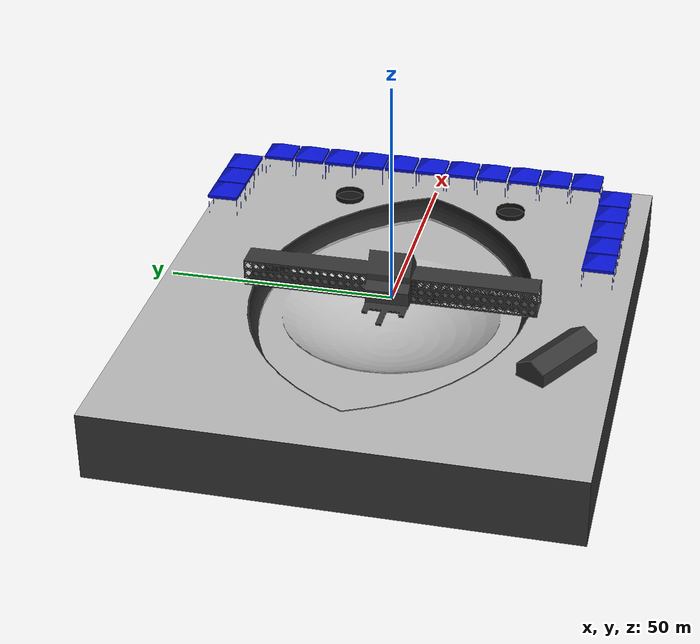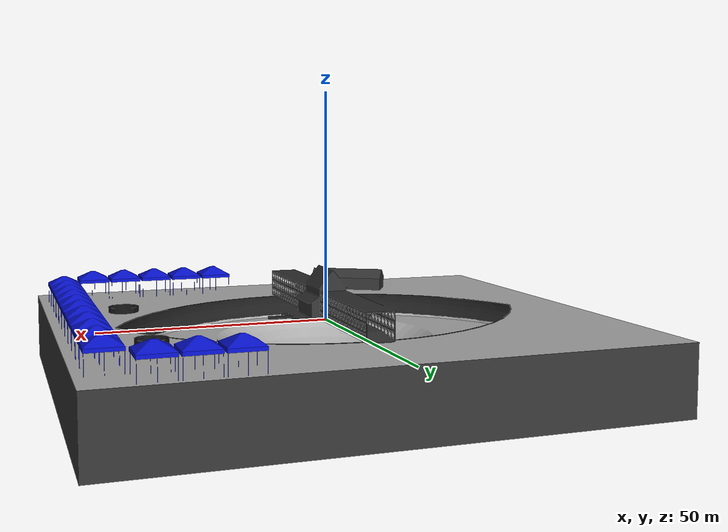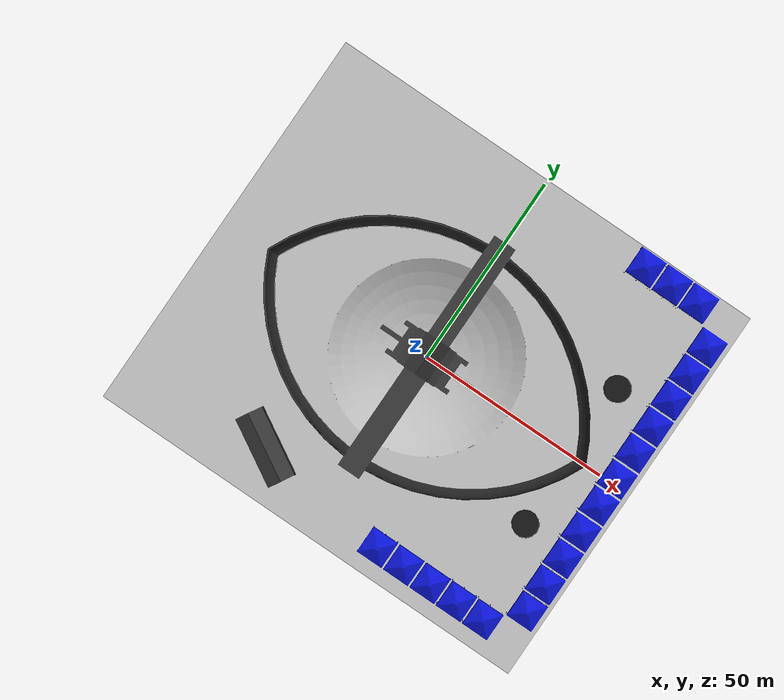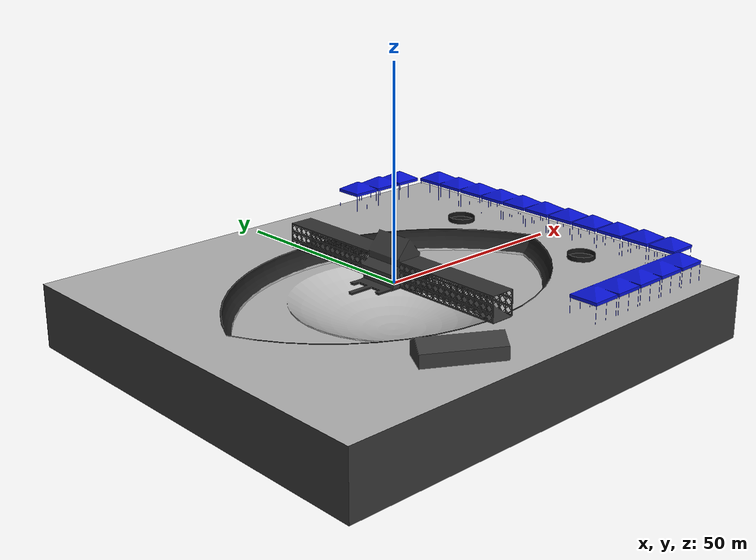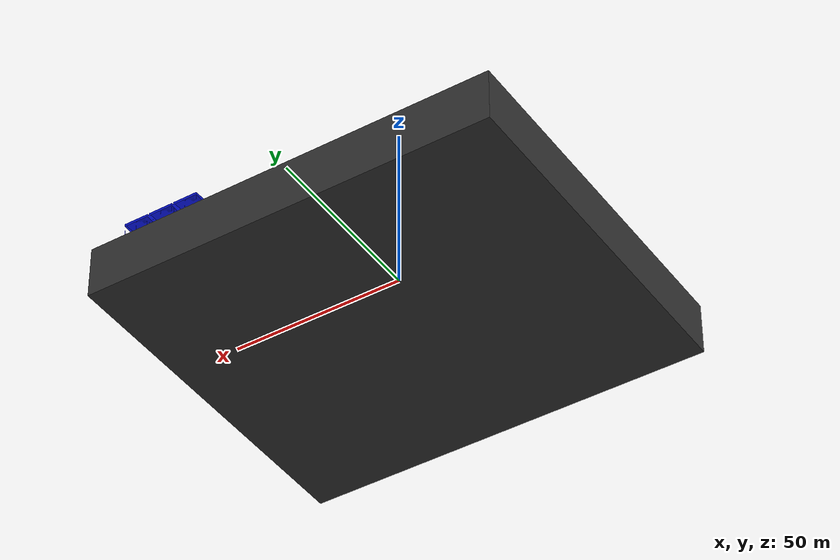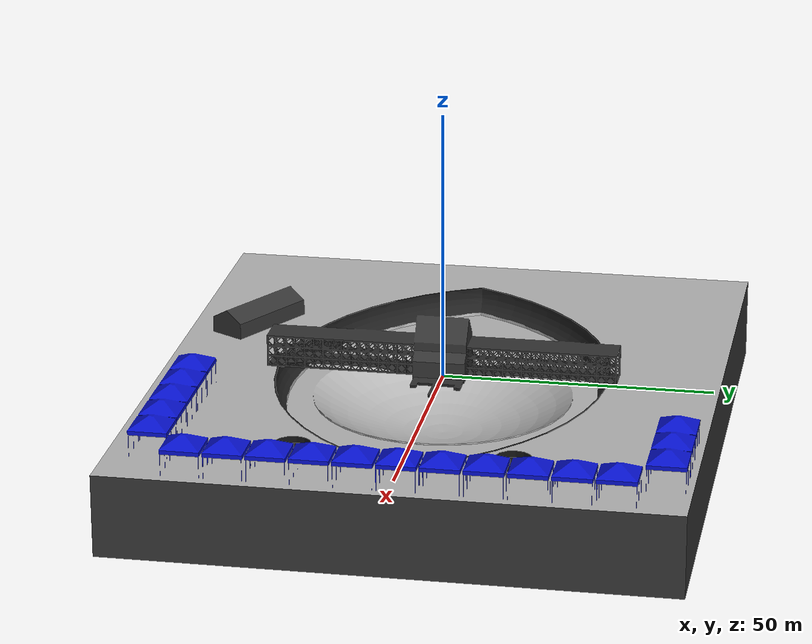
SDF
<?xml version="1.0" ?>
<sdf version="1.5">
  <model name="transdec">
    <static>true</static>
    <link name="link">

      <collision name="collision">
        <pose>0 0 0 0 0 0</pose>
        <geometry>
          <mesh><uri>model://transdec/meshes/transdec.dae</uri></mesh>
        </geometry>
      </collision>

      <visual name="visual">
        <cast_shadows>true</cast_shadows>
        <pose>0 0 0 0 0 0</pose>
        <geometry>
          <mesh>
            <uri>model://transdec/meshes/transdec.dae</uri>
            <scale>1.0 1.0 1.0</scale>
          </mesh>
        </geometry>
      </visual>

    </link>
  </model>
</sdf>
